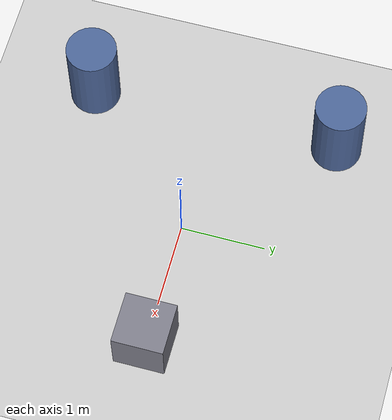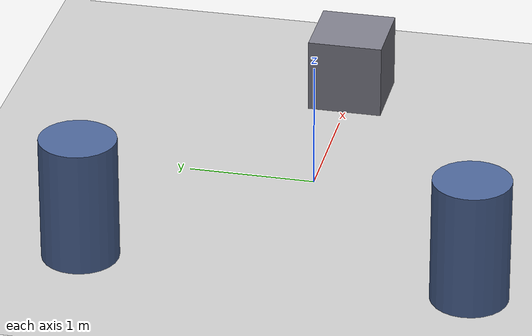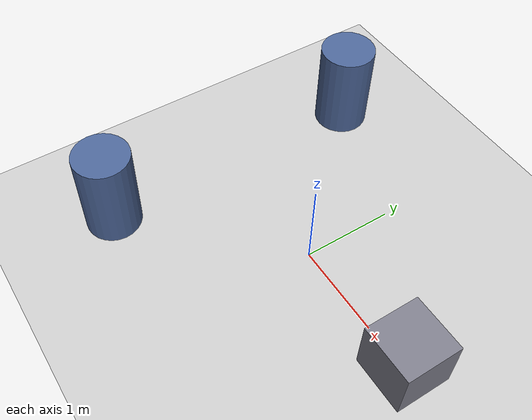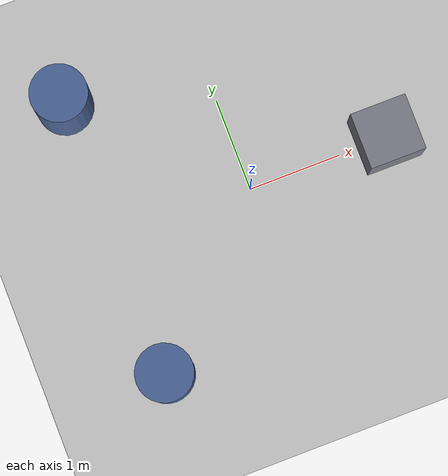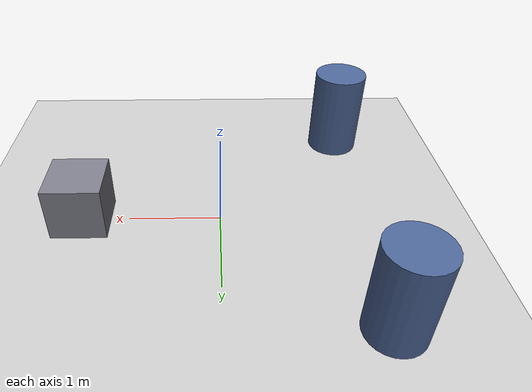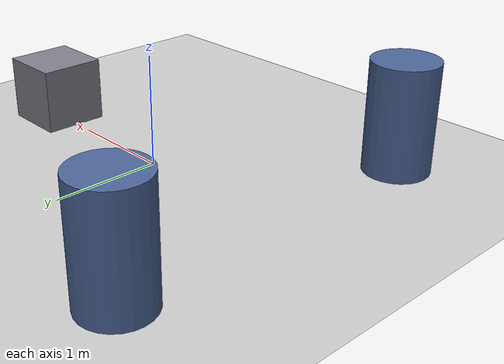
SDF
<?xml version="1.0" ?>
<sdf version="1.6">
  <world name="default">
    <gui fullscreen='0'>
      <camera name='user_camera'>
        <pose>0 0 12 0 1.5708 1.5708</pose>
        <view_controller>orbit</view_controller>
        <projection_type>orthographic</projection_type>
      </camera>
    </gui>

    <include><uri>model://sun</uri></include>
    <include><uri>model://ground_plane</uri></include>

    <!-- Ostacoli statici (devono combaciare con static_obstacles nel yaml) -->
    <model name="obs_box_1">
      <static>true</static>
      <pose>1.5 0.0 0.3 0 0 0</pose>
      <link name="link">
        <collision name="c"><geometry><box><size>0.6 0.6 0.6</size></box></geometry></collision>
        <visual name="v"><geometry><box><size>0.6 0.6 0.6</size></box></geometry>
          <material><ambient>0.4 0.4 0.45 1</ambient><diffuse>0.5 0.5 0.55 1</diffuse></material>
        </visual>
      </link>
    </model>

    <model name="obs_pole_1">
      <static>true</static>
      <pose>-1.5 1.5 0.5 0 0 0</pose>
      <link name="link">
        <collision name="c"><geometry><cylinder><radius>0.3</radius><length>1.0</length></cylinder></geometry></collision>
        <visual name="v"><geometry><cylinder><radius>0.3</radius><length>1.0</length></cylinder></geometry>
          <material><ambient>0.2 0.3 0.5 1</ambient><diffuse>0.3 0.4 0.6 1</diffuse></material>
        </visual>
      </link>
    </model>

    <model name="obs_pole_2">
      <static>true</static>
      <pose>-1.5 -1.5 0.5 0 0 0</pose>
      <link name="link">
        <collision name="c"><geometry><cylinder><radius>0.3</radius><length>1.0</length></cylinder></geometry></collision>
        <visual name="v"><geometry><cylinder><radius>0.3</radius><length>1.0</length></cylinder></geometry>
          <material><ambient>0.2 0.3 0.5 1</ambient><diffuse>0.3 0.4 0.6 1</diffuse></material>
        </visual>
      </link>
    </model>
  </world>
</sdf>
